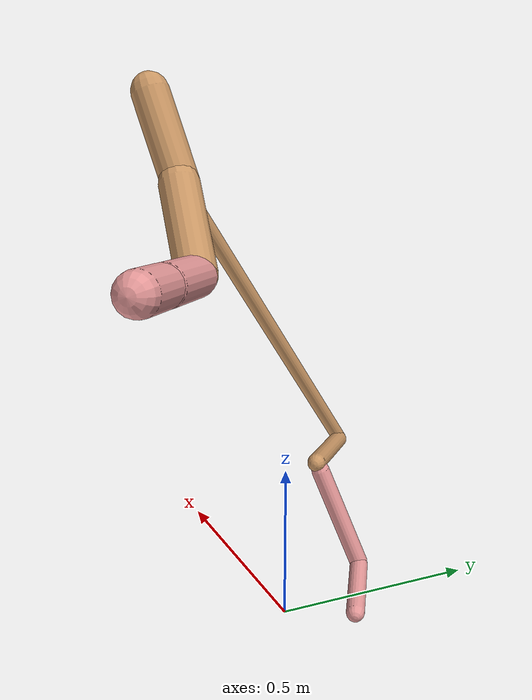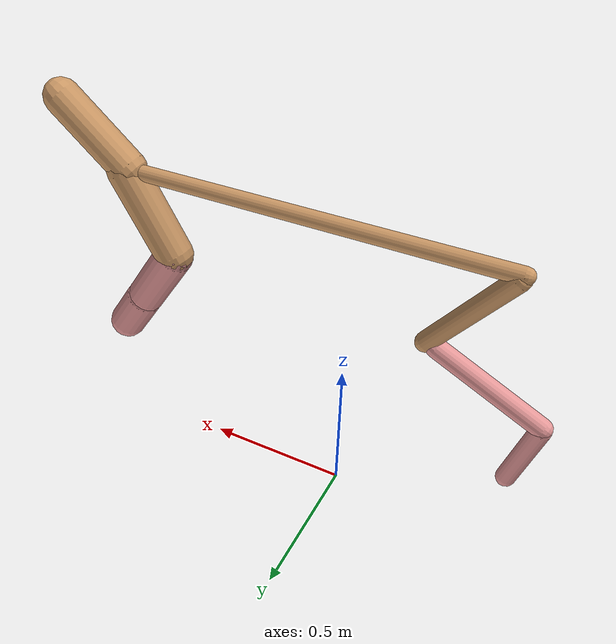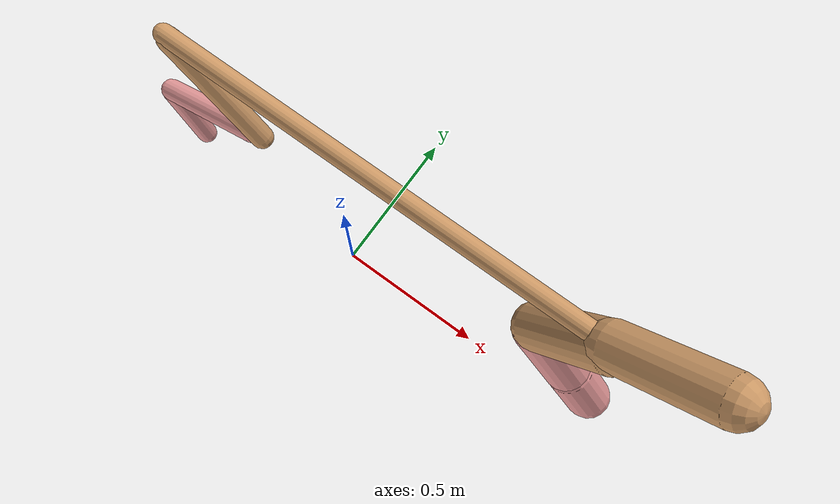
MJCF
<mujoco model="cheetah">
  <compiler angle="radian" coordinate="local" inertiafromgeom="true" settotalmass="14" />
  <default>
    <joint armature=".1" damping=".01" limited="true" solimplimit="0 .8 .03" solreflimit=".02 1" stiffness="8" />
    <geom conaffinity="0" condim="3" contype="1" friction="0.8 .1 .1" rgba="0.8 0.6 .4 1" solimp="0.0 0.8 0.01" solref="0.02 1" />
    <motor ctrllimited="true" ctrlrange="-1 1" />
  </default>
  <size nstack="300000" nuser_geom="1" />
  <option gravity="0 0 -9.81" timestep="0.01" />
  <worldbody>
    <body name="torso" pos="0.0 0.0 1.04748062726784">
      <joint armature="0" axis="1 0 0" damping="0" limited="false" name="ignorex" pos="0 0 0" stiffness="0" type="slide" />
      <joint armature="0" axis="0 0 1" damping="0" limited="false" name="ignorez" pos="0 0 0" stiffness="0" type="slide" />
      <joint armature="0" axis="0 1 0" damping="0" limited="false" name="ignorey" pos="0 0 0" stiffness="0" type="hinge" />
      <geom fromto="-0.5 0.0 0.0 0.7934485540860032 0.0 0.0" name="torso" size="0.02640696511693726" type="capsule" />
      <geom axisangle="0 1 0 .87" name="head" pos="0.8934485540860032 0.0 0.1" size="0.06073957962219666 0.15" type="capsule" />

      <body name="bthigh" pos="-.5 0 0">
        <joint axis="0 1 0" damping="6" name="bthigh" pos="0 0 0" range="-.52 1.05" stiffness="240" type="hinge" />
        <geom axisangle="0 1 0 -3.8" name="bthigh" pos="0.12603397309884784 0.0 -0.1638441650285022" size="0.0322 0.18769889063884473" type="capsule" />
        <body name="bshin" pos="0.2120679461976957 0.0 -0.31768833005700436">
          <joint axis="0 1 0" damping="4.5" name="bshin" pos="0 0 0" range="-.785 .785" stiffness="180" type="hinge" />
          <geom axisangle="0 1 0 -2.03" name="bshin" pos="-0.17950798153060124 0.0 -0.08975399076530062" rgba="0.9 0.6 0.6 1" size="0.0322 0.19417126617811525" type="capsule" />
          <body name="bfoot" pos="-0.3590159630612025 0.0 -0.17950798153060124">
            <joint axis="0 1 0" damping="3" name="bfoot" pos="0 0 0" range="-.4 .785" stiffness="120" type="hinge" />
            <geom axisangle="0 1 0 -.27" name="bfoot" pos="0.038178796981359155 0.0 -0.1234447769063946" rgba="0.9 0.6 0.6 1" size="0.0322 0.12168066013828556" type="capsule" />
            <inertial mass="10" />
          </body>
        </body>
      </body>
      <body name="fthigh" pos="0.7934485540860032 0.0 0.0">
        <joint axis="0 1 0" damping="4.5" name="fthigh" pos="0 0 0" range="-1.5 0.8" stiffness="180" type="hinge" />
        <geom axisangle="0 1 0 .52" name="fthigh" pos="-0.0822839350877799 0.0 -0.14105817443619412" size="0.06509311187785739 0.15737912573957422" type="capsule" />
        <body name="fshin" pos="-0.1645678701755598 0.0 -0.28211634887238823">
          <joint axis="0 1 0" damping="3" name="fshin" pos="0 0 0" range="-1.2 1.1" stiffness="120" type="hinge" />
          <geom axisangle="0 1 0 -.6" name="fshin" pos="0.07637606970029687 0.0 -0.10575148112348795" rgba="0.9 0.6 0.6 1" size="0.06509311187785739 0.12542997991274335" type="capsule" />
          <body name="ffoot" pos="0.15275213940059373 0.0 -0.2115029622469759">
            <joint axis="0 1 0" damping="1.5" name="ffoot" pos="0 0 0" range="-3.1 -0.3" stiffness="60" type="hinge" />
            <geom axisangle="0 1 0 -.6" name="ffoot" pos="0.05193852490171635 0.0 -0.08079326095822544" rgba="0.9 0.6 0.6 1" size="0.06509311187785739 0.08283111881030222" type="capsule" />
            <inertial mass="10" />
          </body>
        </body>
      </body>
    </body>
  </worldbody>
  <actuator>
    <motor gear="120" joint="bthigh" name="bthigh" />
    <motor gear="90" joint="bshin" name="bshin" />
    <motor gear="60" joint="bfoot" name="bfoot" />
    <motor gear="120" joint="fthigh" name="fthigh" />
    <motor gear="60" joint="fshin" name="fshin" />
    <motor gear="30" joint="ffoot" name="ffoot" />
  </actuator>
</mujoco>
